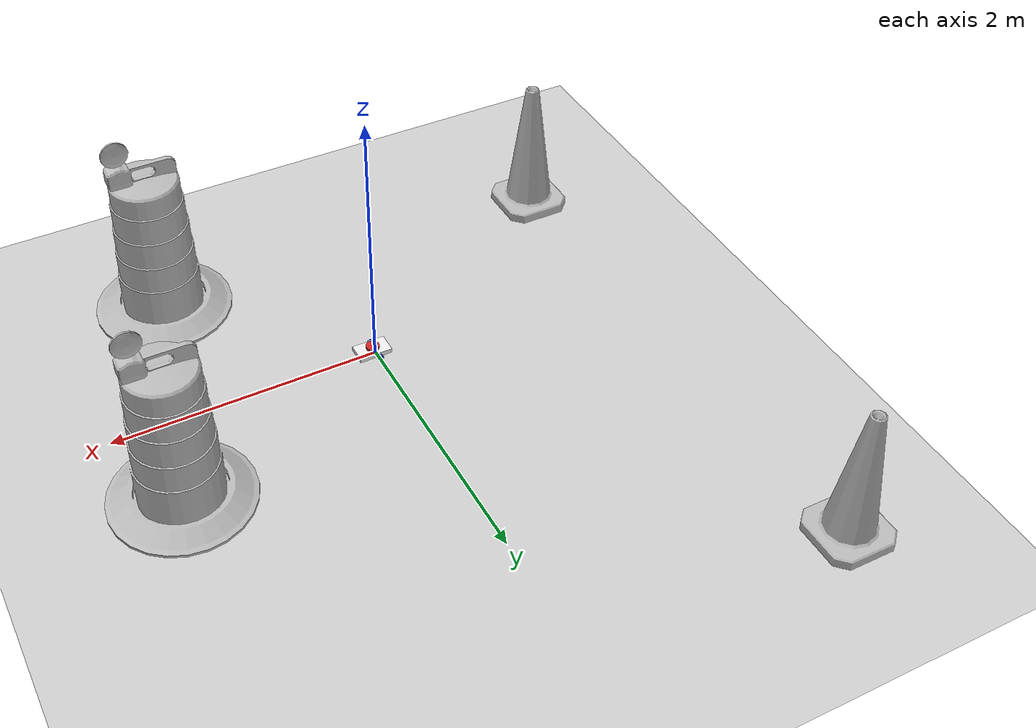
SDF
<sdf version="1.7">
 <world name="default">
  <light name="sun" type="directional">
   <pose>0 0 10 0 -0 0</pose>
   <diffuse>0.8 0.8 0.8 1</diffuse>
   <specular>0.2 0.2 0.2 1</specular>
   <attenuation>
    <range>1000</range>
    <constant>0.9</constant>
    <linear>0.01</linear>
    <quadratic>0.001</quadratic>
   </attenuation>
   <direction>-0.5 0.1 -0.9</direction>
   <spot><inner_angle>0</inner_angle><outer_angle>0</outer_angle><falloff>0</falloff></spot>
  </light>
  <model name="ground_plane">
   <static>1</static>
   <link name="link">
    <collision name="collision">
     <geometry><plane><normal>0 0 1</normal><size>100 100</size></plane></geometry>
     <surface>
      <contact><collide_bitmask>65535</collide_bitmask></contact>
      <friction><ode><mu>100</mu><mu2>50</mu2></ode></friction>
     </surface>
    </collision>
    <visual name="visual">
     <cast_shadows>0</cast_shadows>
     <geometry><plane><normal>0 0 1</normal><size>100 100</size></plane></geometry>
     <material>
      <script><uri>file://media/materials/scripts/gazebo.material</uri><name>Gazebo/Grey</name></script>
     </material>
    </visual>
   </link>
  </model>
  <gravity>0 0 -9.8</gravity>
  <magnetic_field>6e-06 2.3e-05 -4.2e-05</magnetic_field>
  <atmosphere type="adiabatic"/>
  <physics type="ode">
   <max_step_size>0.001</max_step_size>
   <real_time_factor>1</real_time_factor>
   <real_time_update_rate>1000</real_time_update_rate>
  </physics>
  <scene><ambient>0.4 0.4 0.4 1</ambient><background>0.7 0.7 0.7 1</background><shadows>1</shadows></scene>
  <spherical_coordinates>
   <surface_model>EARTH_WGS84</surface_model>
   <latitude_deg>0</latitude_deg>
   <longitude_deg>0</longitude_deg>
   <elevation>0</elevation>
   <heading_deg>0</heading_deg>
  </spherical_coordinates>
  <model name="my_bot">
   <link name="base_link">
    <inertial>
     <pose>0.037857 0 0.0175 0 -0 0</pose>
     <mass>0.7</mass>
     <inertia>
      <ixx>0.00115062</ixx>
      <ixy>0</ixy>
      <ixz>0.000175</ixz>
      <iyy>0.00360658</iyy>
      <iyz>0</iyz>
      <izz>0.00448095</izz>
     </inertia>
    </inertial>
    <collision name="base_link_fixed_joint_lump__chassis_collision">
     <pose>0.025 0 0.0175 0 -0 0</pose>
     <geometry><box><size>0.25 0.15 0.035</size></box></geometry>
    </collision>
    <collision name="base_link_fixed_joint_lump__caster_wheel_collision_1">
     <pose>0.12 0 0 0 -0 0</pose>
     <geometry><sphere><radius>0.025</radius></sphere></geometry>
     <surface><friction><ode><mu>0.001</mu><mu2>0.001</mu2></ode></friction></surface>
    </collision>
    <collision name="base_link_fixed_joint_lump__laser_frame_collision_2">
     <pose>0.02 0 0.035 0 -0 0</pose>
     <geometry><cylinder><length>0.04</length><radius>0.05</radius></cylinder></geometry>
    </collision>
    <visual name="base_link_fixed_joint_lump__chassis_visual">
     <pose>0.025 0 0.0175 0 -0 0</pose>
     <geometry><box><size>0.25 0.15 0.035</size></box></geometry>
     <material>
      <script><name>Gazebo/white</name><uri>file://media/materials/scripts/gazebo.material</uri></script>
     </material>
    </visual>
    <visual name="base_link_fixed_joint_lump__caster_wheel_visual_1">
     <pose>0.12 0 0 0 -0 0</pose>
     <geometry><sphere><radius>0.025</radius></sphere></geometry>
     <material>
      <script><name>Gazebo/Black</name><uri>file://media/materials/scripts/gazebo.material</uri></script>
     </material>
    </visual>
    <visual name="base_link_fixed_joint_lump__laser_frame_visual_2">
     <pose>0.02 0 0.035 0 -0 0</pose>
     <geometry><cylinder><length>0.04</length><radius>0.05</radius></cylinder></geometry>
     <material>
      <script><name>Gazebo/Red</name><uri>file://media/materials/scripts/gazebo.material</uri></script>
     </material>
    </visual>
    <sensor name="laser" type="ray">
     <visualize>1</visualize>
     <update_rate>10</update_rate>
     <ray>
      <scan>
       <horizontal>
        <samples>360</samples>
        <resolution>1</resolution>
        <min_angle>-3.14</min_angle>
        <max_angle>3.14</max_angle>
       </horizontal>
       <vertical><samples>1</samples><min_angle>0</min_angle><max_angle>0</max_angle></vertical>
      </scan>
      <range><min>0.3</min><max>12</max><resolution>0.01</resolution></range>
     </ray>
     <plugin name="laser_controller" filename="libgazebo_ros_ray_sensor.so">
      <ros><argument>~/out:=scan</argument></ros>
      <output_type>sensor_msgs/LaserScan</output_type>
      <frame_name>laser_frame</frame_name>
     </plugin>
     <pose>0.02 0 0.035 0 -0 0</pose>
    </sensor>
   </link>
   <joint name="left_wheel_joint" type="revolute">
    <pose relative_to="base_link">0 0.087 0 -1.5708 0 0</pose>
    <parent>base_link</parent>
    <child>left_wheel</child>
    <axis>
     <xyz>0 0 1</xyz>
     <limit><lower>-1e+16</lower><upper>1e+16</upper></limit>
     <dynamics><spring_reference>0</spring_reference><spring_stiffness>0</spring_stiffness></dynamics>
    </axis>
   </joint>
   <link name="left_wheel">
    <pose relative_to="left_wheel_joint">0 0 0 0 -0 0</pose>
    <inertial>
     <mass>0.1</mass>
     <inertia>
      <ixx>1.89583e-05</ixx>
      <ixy>0</ixy>
      <ixz>0</ixz>
      <iyy>1.89583e-05</iyy>
      <iyz>0</iyz>
      <izz>3.125e-05</izz>
     </inertia>
    </inertial>
    <collision name="left_wheel_collision">
     <geometry><cylinder><length>0.001</length><radius>0.025</radius></cylinder></geometry>
    </collision>
    <visual name="left_wheel_visual">
     <geometry><cylinder><length>0.02</length><radius>0.025</radius></cylinder></geometry>
     <material>
      <script><name>Gazebo/Blue</name><uri>file://media/materials/scripts/gazebo.material</uri></script>
     </material>
    </visual>
   </link>
   <joint name="right_wheel_joint" type="revolute">
    <pose relative_to="base_link">0 -0.087 0 1.5708 -0 0</pose>
    <parent>base_link</parent>
    <child>right_wheel</child>
    <axis>
     <xyz>0 0 -1</xyz>
     <limit><lower>-1e+16</lower><upper>1e+16</upper></limit>
     <dynamics><spring_reference>0</spring_reference><spring_stiffness>0</spring_stiffness></dynamics>
    </axis>
   </joint>
   <link name="right_wheel">
    <pose relative_to="right_wheel_joint">0 0 0 0 -0 0</pose>
    <inertial>
     <mass>0.1</mass>
     <inertia>
      <ixx>1.89583e-05</ixx>
      <ixy>0</ixy>
      <ixz>0</ixz>
      <iyy>1.89583e-05</iyy>
      <iyz>0</iyz>
      <izz>3.125e-05</izz>
     </inertia>
    </inertial>
    <collision name="right_wheel_collision">
     <geometry><cylinder><length>0.001</length><radius>0.025</radius></cylinder></geometry>
    </collision>
    <visual name="right_wheel_visual">
     <geometry><cylinder><length>0.02</length><radius>0.025</radius></cylinder></geometry>
     <material>
      <script><name>Gazebo/Blue</name><uri>file://media/materials/scripts/gazebo.material</uri></script>
     </material>
    </visual>
   </link>
   <static>0</static>
   <plugin name="gazebo_ros2_control" filename="libgazebo_ros2_control.so">
    <parameters>/home/afiq/dev_ws/install/my_bot/share/my_bot/config/my_controllers.yaml</parameters>
   </plugin>
   <pose>-1.5e-05 7.2e-05 0.025 0 0 -0.000831</pose>
  </model>
  <model name="Construction Barrel">
   <link name="link">
    <inertial>
     <pose>0 0 0.4 0 -0 0</pose>
     <mass>500</mass>
     <inertia><ixx>51.2096</ixx><iyy>51.2096</iyy><izz>25</izz><ixy>0</ixy><ixz>0</ixz><iyz>0</iyz></inertia>
    </inertial>
    <collision name="collision">
     <geometry><mesh><uri>model://construction_barrel/meshes/construction_barrel.dae</uri></mesh></geometry>
    </collision>
    <visual name="visual">
     <geometry><mesh><uri>model://construction_barrel/meshes/construction_barrel.dae</uri></mesh></geometry>
    </visual>
   </link>
   <pose>1.71575 0.679595 -1e-06 3e-06 1e-05 -7e-06</pose>
  </model>
  <model name="Construction Barrel_0">
   <link name="link">
    <inertial>
     <pose>0 0 0.4 0 -0 0</pose>
     <mass>500</mass>
     <inertia><ixx>51.2096</ixx><iyy>51.2096</iyy><izz>25</izz><ixy>0</ixy><ixz>0</ixz><iyz>0</iyz></inertia>
    </inertial>
    <collision name="collision">
     <geometry><mesh><uri>model://construction_barrel/meshes/construction_barrel.dae</uri></mesh></geometry>
    </collision>
    <visual name="visual">
     <geometry><mesh><uri>model://construction_barrel/meshes/construction_barrel.dae</uri></mesh></geometry>
    </visual>
   </link>
   <pose>1.20397 -1.20397 1e-06 2e-06 3e-06 -6e-06</pose>
  </model>
  <model name="Construction Cone">
   <link name="link">
    <collision name="collision">
     <geometry>
      <mesh><scale>10 10 10</scale><uri>model://construction_cone/meshes/construction_cone.dae</uri></mesh>
     </geometry>
    </collision>
    <visual name="visual">
     <geometry>
      <mesh><scale>10 10 10</scale><uri>model://construction_cone/meshes/construction_cone.dae</uri></mesh>
     </geometry>
    </visual>
    <inertial>
     <inertia><ixx>1</ixx><ixy>0</ixy><ixz>0</ixz><iyy>1</iyy><iyz>0</iyz><izz>1</izz></inertia>
     <mass>1</mass>
    </inertial>
   </link>
   <pose>-1.88781 -1.08287 -0 0 -0 0</pose>
  </model>
  <model name="Construction Cone_0">
   <link name="link">
    <collision name="collision">
     <geometry>
      <mesh><scale>10 10 10</scale><uri>model://construction_cone/meshes/construction_cone.dae</uri></mesh>
     </geometry>
    </collision>
    <visual name="visual">
     <geometry>
      <mesh><scale>10 10 10</scale><uri>model://construction_cone/meshes/construction_cone.dae</uri></mesh>
     </geometry>
    </visual>
    <inertial>
     <inertia><ixx>1</ixx><ixy>0</ixy><ixz>0</ixz><iyy>1</iyy><iyz>0</iyz><izz>1</izz></inertia>
     <mass>1</mass>
    </inertial>
   </link>
   <pose>-1.99713 2.92488 -0 0 -1e-06 0</pose>
  </model>
 </world>
</sdf>
